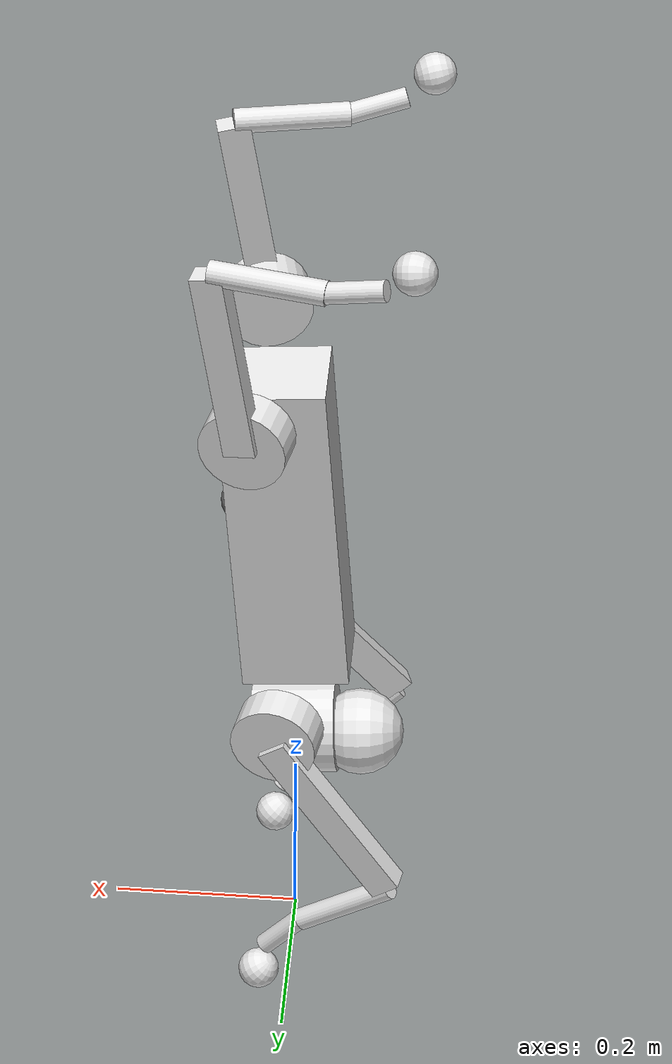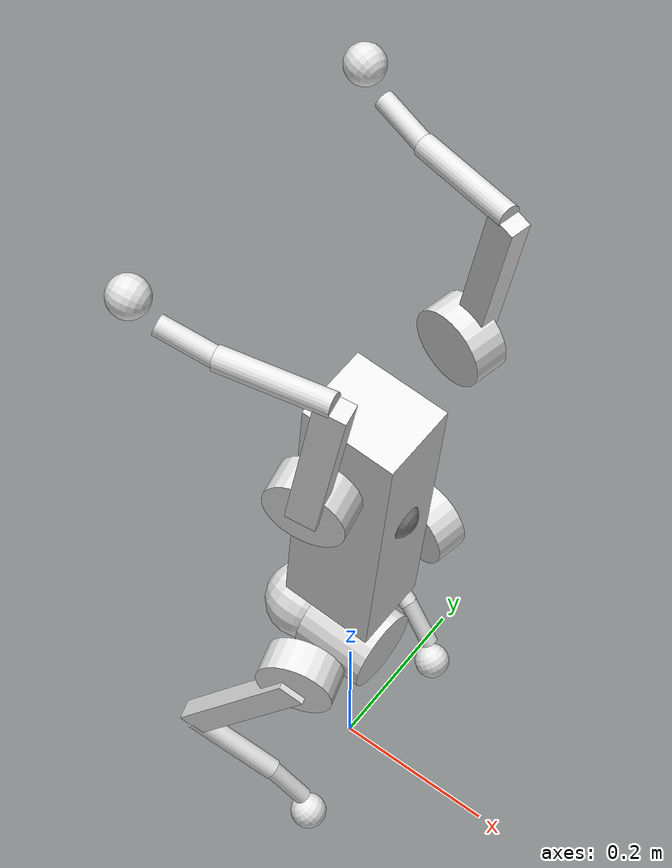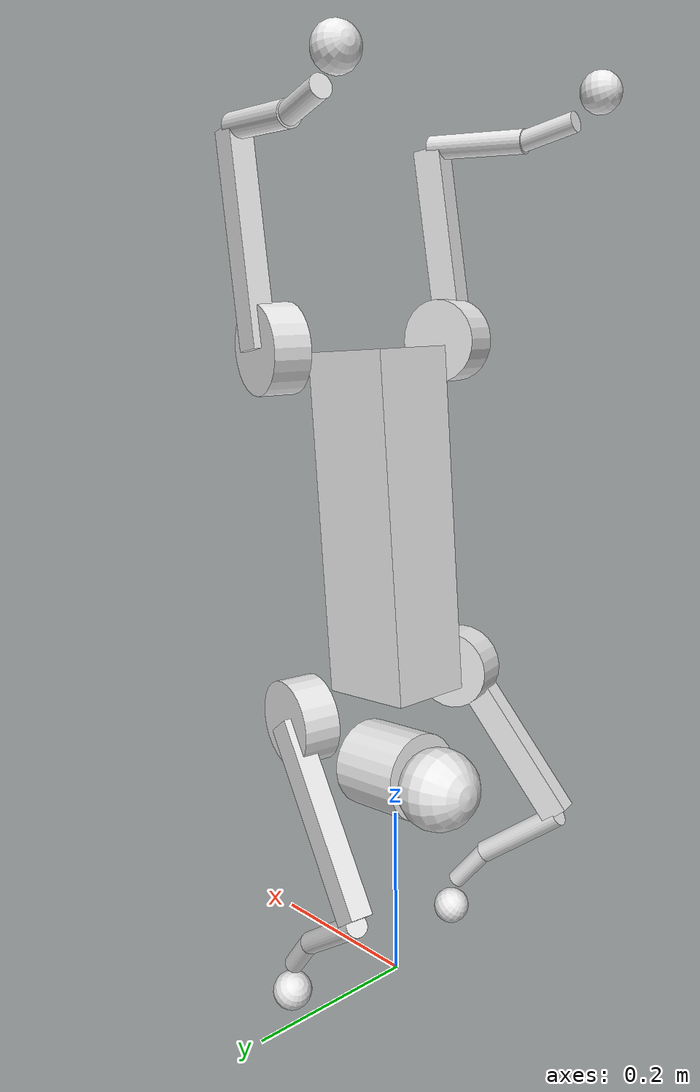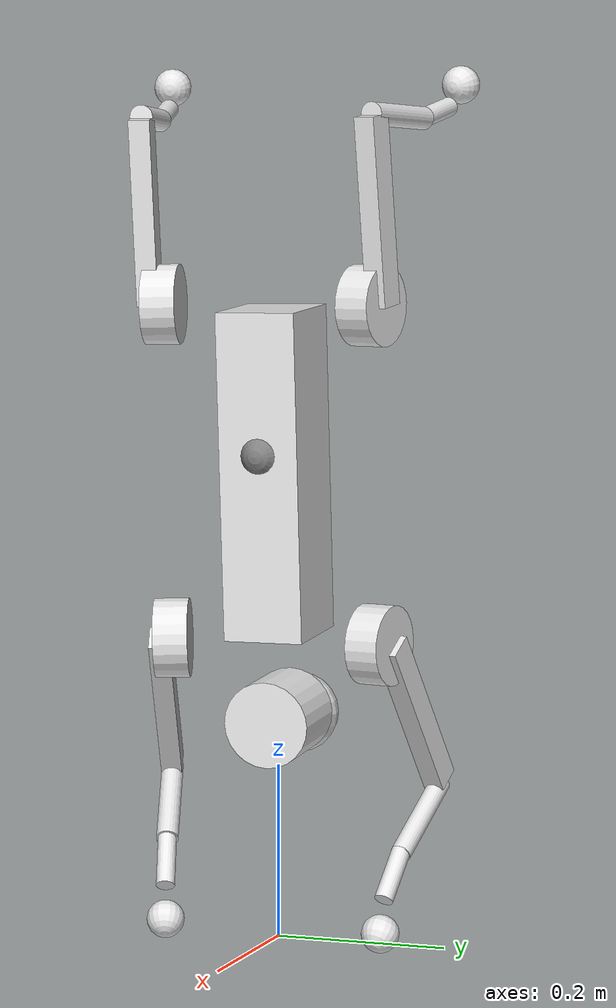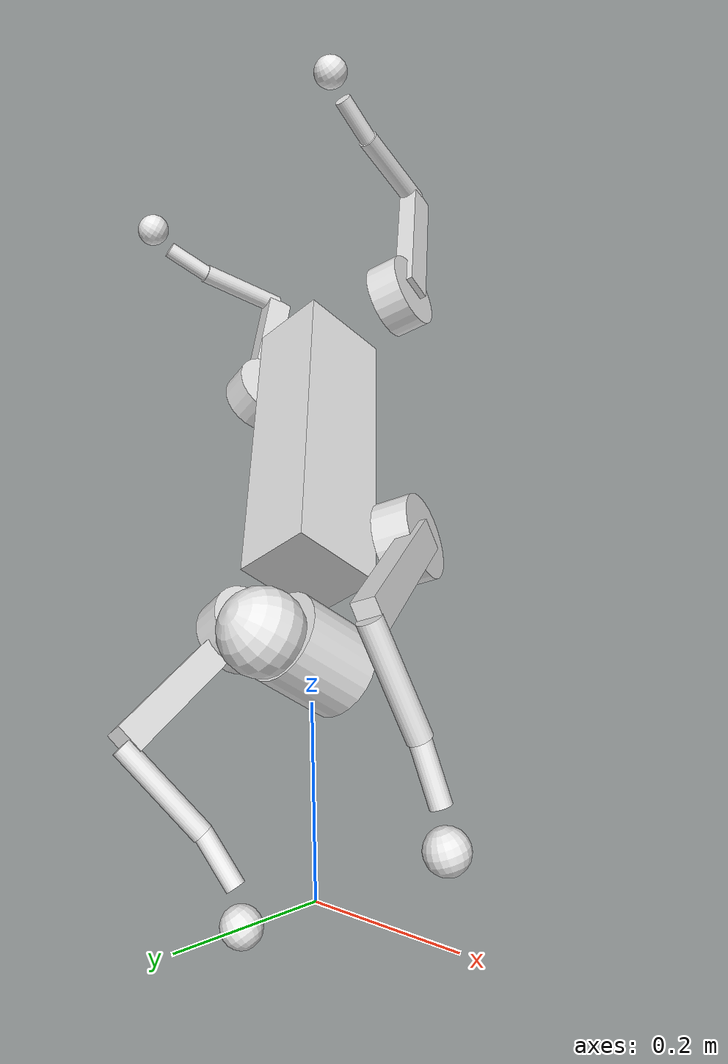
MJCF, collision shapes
<mujoco>
  <compiler angle="radian" assetdir="assets"/>
  <option timestep="0.02">
    <flag/>
  </option>
  <statistic/>
  <asset>
    <texture type="2d" colorspace="linear" name="noise_normal" file="noise_normal.png"/>
    <material name="black_plastic" rgba="0.0507087 0.0507087 0.0507087 1.0" reflectance="0.5" roughness="0.4" metallic="0.0" texuniform="true" texrepeat="12.0 12.0">
      <layer texture="noise_normal" role="normal"/>
    </material>
    <material name="black_metal" rgba="0.220085 0.220813 0.2209164 1.0" reflectance="0.5" roughness="0.5" metallic="1.0" texuniform="true" texrepeat="16.0 16.0">
      <layer texture="noise_normal" role="normal"/>
    </material>
    <material name="aluminum_rough" rgba="0.9621279 0.9653596 0.9658199 1.0" reflectance="0.5" roughness="0.54" metallic="1.0" texuniform="true" texrepeat="12.0 12.0">
      <layer texture="noise_normal" role="normal"/>
    </material>
    <material name="gray_plastic" rgba="0.5969514 0.5983734 0.6262097 1.0" reflectance="0.5" roughness="0.4" metallic="0.0"/>
    <material name="black_rubber" rgba="0.0507087 0.0507087 0.0507087 1.0" reflectance="0.5" roughness="0.7" metallic="0.0" texuniform="true" texrepeat="16.0 16.0">
      <layer texture="noise_normal" role="normal"/>
    </material>
    <material name="template" rgba="0.9063318 0.9063318 0.9063318 1.0" reflectance="0.5" roughness="0.5" metallic="0.0"/>
    <mesh name="base_0" file="base_0.obj"/>
    <mesh name="base_1" file="base_1.obj"/>
    <mesh name="base_2" file="base_2.obj"/>
    <mesh name="base_3" file="base_3.obj"/>
    <mesh name="base_4" file="base_4.obj"/>
    <mesh name="hip_0" file="hip_0.obj"/>
    <mesh name="hip_1" file="hip_1.obj"/>
    <mesh name="thigh_0" file="thigh_0.obj"/>
    <mesh name="thigh_1" file="thigh_1.obj"/>
    <mesh name="calf_0" file="calf_0.obj"/>
    <mesh name="foot" file="foot.obj"/>
    <mesh name="thigh_mirror_0" file="thigh_mirror_0.obj"/>
    <mesh name="thigh_mirror_1" file="thigh_mirror_1.obj"/>
    <mesh name="calf_mirror_0" file="calf_mirror_0.obj"/>
  </asset>
  <worldbody>
    <body name="base" pos="0.0117122 -0.0 0.5403712" quat="0.680076 -0.0 0.7331416 0.0">
      <inertial pos="0.021112 0.0 -0.005366" quat="0.000544 -0.7134351 0.0017372 -0.700719" mass="6.921" diaginertia="0.107027 0.0980771 0.0244531"/>
      <joint name="JNT_Joint" pos="0.0 0.0 0.0" axis="0.0 1.0 1e-07" type="free" armature="0.01" damping="0.5" frictionloss="0.2"/>
      <geom name="base1" pos="0.0 0.0 0.0" quat="1.0 -0.0 0.0 0.0" type="box" size="0.1881 0.04675 0.057" material="template" group="3" condim="1" conaffinity="2" friction="0.6 0.005 0.0001" margin="0.001"/>
      <geom name="base2" pos="0.285 0.0 0.01" quat="1.0 -0.0 0.0 0.0" type="cylinder" size="0.05 0.045" material="template" group="3" condim="1" conaffinity="2" friction="0.6 0.005 0.0001" margin="0.001"/>
      <geom name="base3" pos="0.293 0.0 -0.06" quat="1.0 -0.0 0.0 0.0" type="sphere" size="0.047" material="template" group="3" condim="1" conaffinity="2" friction="0.6 0.005 0.0001" margin="0.001"/>
      <geom name="base_0" pos="0.0 -0.0 0.0" quat="1.0 -0.0 0.0 0.0" type="mesh" mesh="base_0" material="black_plastic" group="2" condim="1" contype="0" conaffinity="0" friction="0.6 0.005 0.0001" margin="0.001"/>
      <geom name="base_1" pos="0.0 -0.0 0.0" quat="1.0 -0.0 0.0 0.0" type="mesh" mesh="base_1" material="black_metal" group="2" condim="1" contype="0" conaffinity="0" friction="0.6 0.005 0.0001" margin="0.001"/>
      <geom name="base_2" pos="0.0 -0.0 0.0" quat="1.0 -0.0 0.0 0.0" type="mesh" mesh="base_2" material="black_plastic" group="2" condim="1" contype="0" conaffinity="0" friction="0.6 0.005 0.0001" margin="0.001"/>
      <geom name="base_3" pos="0.0 -0.0 0.0" quat="1.0 -0.0 0.0 0.0" type="mesh" mesh="base_3" material="aluminum_rough" group="2" condim="1" contype="0" conaffinity="0" friction="0.6 0.005 0.0001" margin="0.001"/>
      <geom name="base_4" pos="0.0 -0.0 0.0" quat="1.0 -0.0 0.0 0.0" type="mesh" mesh="base_4" material="gray_plastic" group="2" condim="1" contype="0" conaffinity="0" friction="0.6 0.005 0.0001" margin="0.001"/>
      <site name="imu" pos="-0.02557 0.0 0.04232" quat="1.0 -0.0 0.0 0.0" type="sphere" size="0.025"/>
      <body name="FL_hip" pos="0.1934 0.0465 -0.0" quat="0.9961696 0.0874425 0.0 0.0">
        <inertial pos="-0.0054 0.00194 -0.000105" quat="0.4970137 0.4992449 0.505462 0.4982369" mass="0.678" diaginertia="0.000884 0.000596 0.00048"/>
        <joint name="FL_hip_joint" pos="0.0 0.0 0.0" axis="1.0 -1e-07 -1e-07" type="hinge" range="-1.0472 1.0472" armature="0.01" damping="0.5" frictionloss="0.2"/>
        <geom name="FL_hip_geom" pos="0.0 0.08 0.0" quat="0.7071068 0.7071068 -0.0 0.0" type="cylinder" size="0.046 0.02" material="template" group="3" condim="1" conaffinity="2" friction="0.6 0.005 0.0001" margin="0.001"/>
        <geom name="hip_0" pos="0.0 0.0 -0.0" quat="1.0 -0.0 0.0 -0.0" type="mesh" mesh="hip_0" material="aluminum_rough" group="2" condim="1" contype="0" conaffinity="0" friction="0.6 0.005 0.0001" margin="0.001"/>
        <geom name="hip_1" pos="0.0 0.0 -0.0" quat="1.0 -0.0 0.0 -0.0" type="mesh" mesh="hip_1" material="gray_plastic" group="2" condim="1" contype="0" conaffinity="0" friction="0.6 0.005 0.0001" margin="0.001"/>
        <body name="FL_thigh" pos="-0.0 0.0955 -1e-07" quat="0.875406 0.0 -0.4833884 0.0">
          <inertial pos="-0.00374 -0.0223 -0.0327" quat="0.8295329 0.0847635 -0.0200632 0.5516229" mass="1.152" diaginertia="0.0059497 0.0058415 0.0008788"/>
          <joint name="FL_thigh_joint" pos="0.0 0.0 0.0" axis="-0.0 1.0 1e-07" type="hinge" range="-1.5707999 3.4907" armature="0.01" damping="0.5" frictionloss="0.2"/>
          <geom name="FL_thigh_geom" pos="0.0 0.0 -0.1065" quat="0.7071068 0.0 0.7071068 -0.0" type="box" size="0.1065 0.01225 0.017" material="template" group="3" condim="1" conaffinity="2" friction="0.6 0.005 0.0001" margin="0.001"/>
          <geom name="thigh_0" pos="-0.0 -0.0 -0.0" quat="1.0 0.0 -0.0 -0.0" type="mesh" mesh="thigh_0" material="aluminum_rough" group="2" condim="1" contype="0" conaffinity="0" friction="0.6 0.005 0.0001" margin="0.001"/>
          <geom name="thigh_1" pos="-0.0 -0.0 -0.0" quat="1.0 0.0 -0.0 -0.0" type="mesh" mesh="thigh_1" material="gray_plastic" group="2" condim="1" contype="0" conaffinity="0" friction="0.6 0.005 0.0001" margin="0.001"/>
          <body name="FL_calf" pos="-0.0 0.0 -0.213" quat="0.7692807 -0.0 -0.6389109 -0.0">
            <inertial pos="0.006296 -0.0006221 -0.141417" quat="0.7106718 0.001541 -0.0045008 0.7035077" mass="0.241352" diaginertia="0.0014901 0.0014636 5.31e-05"/>
            <joint name="FL_calf_joint" pos="0.0 0.0 0.0" axis="-0.0 1.0 1e-07" type="hinge" range="-2.7227001 -0.83776" armature="0.01" damping="0.5" frictionloss="0.2"/>
            <geom name="calf_0" pos="0.0 0.0 0.0" quat="1.0 0.0 0.0 0.0" type="mesh" mesh="calf_0" material="aluminum_rough" group="2" condim="1" contype="0" conaffinity="0" friction="0.6 0.005 0.0001" margin="0.001"/>
            <geom name="FL" pos="-0.002 0.0 -0.213" quat="1.0 0.0 0.0 0.0" type="sphere" size="0.022" material="template" group="3" condim="6" conaffinity="2" priority="1" friction="0.4 0.02 0.01" margin="0.001"/>
            <geom name="FL_calf_geom1" pos="0.008 0.0 -0.06" quat="0.9944927 -0.0 -0.104807 0.0" type="cylinder" size="0.012 0.06" material="template" group="3" condim="1" conaffinity="2" friction="0.6 0.005 0.0001" margin="0.001"/>
            <geom name="FL_calf_geom2" pos="0.02 0.0 -0.148" quat="0.9996875 0.0 0.0249974 0.0" type="cylinder" size="0.011 0.0325" material="template" group="3" condim="1" conaffinity="2" friction="0.6 0.005 0.0001" margin="0.001"/>
            <geom name="foot" pos="-0.0 0.0 -0.213" quat="1.0 0.0 0.0 0.0" type="mesh" mesh="foot" material="black_rubber" group="2" condim="1" contype="0" conaffinity="0" friction="0.6 0.005 0.0001" margin="0.001"/>
          </body>
        </body>
      </body>
      <body name="FR_hip" pos="0.1934001 -0.0465 0.0" quat="0.9894196 -0.1450818 -0.0 0.0">
        <inertial pos="-0.0054 -0.00194 -0.000105" quat="0.4982369 0.5054619 0.499245 0.4970139" mass="0.678" diaginertia="0.000884 0.000596 0.00048"/>
        <joint name="FR_hip_joint" pos="0.0 0.0 0.0" axis="1.0 -1e-07 -1e-07" type="hinge" range="-1.0472 1.0472" armature="0.01" damping="0.5" frictionloss="0.2"/>
        <geom name="FR_hip_geom" pos="0.0 -0.08 0.0" quat="0.7071066 0.7071069 -0.0 0.0" type="cylinder" size="0.046 0.02" material="template" group="3" condim="1" conaffinity="2" friction="0.6 0.005 0.0001" margin="0.001"/>
        <geom name="hip_0_001" pos="0.0 0.0 0.0" quat="4.63e-05 1.0 -0.0 0.0" type="mesh" mesh="hip_0" material="aluminum_rough" group="2" condim="1" contype="0" conaffinity="0" friction="0.6 0.005 0.0001" margin="0.001"/>
        <geom name="hip_1_001" pos="0.0 0.0 0.0" quat="4.63e-05 1.0 -0.0 0.0" type="mesh" mesh="hip_1" material="gray_plastic" group="2" condim="1" contype="0" conaffinity="0" friction="0.6 0.005 0.0001" margin="0.001"/>
        <body name="FR_thigh" pos="0.0 -0.0955 -0.0" quat="0.8815233 -0.0 -0.4721405 -0.0">
          <inertial pos="-0.00374 0.0223 -0.0327" quat="0.551623 -0.0200632 0.0847635 0.8295329" mass="1.152" diaginertia="0.0059497 0.0058415 0.0008788"/>
          <joint name="FR_thigh_joint" pos="0.0 0.0 0.0" axis="-0.0 1.0 1e-07" type="hinge" range="-1.5707999 3.4907" armature="0.01" damping="0.5" frictionloss="0.2"/>
          <geom name="FR_thigh_geom" pos="0.0 0.0 -0.1065" quat="0.7071068 0.0 0.7071068 -0.0" type="box" size="0.1065 0.01225 0.017" material="template" group="3" condim="1" conaffinity="2" friction="0.6 0.005 0.0001" margin="0.001"/>
          <geom name="thigh_mirror_0" pos="-0.0 0.0 -1e-07" quat="1.0 0.0 -1e-07 -0.0" type="mesh" mesh="thigh_mirror_0" material="aluminum_rough" group="2" condim="1" contype="0" conaffinity="0" friction="0.6 0.005 0.0001" margin="0.001"/>
          <geom name="thigh_mirror_1" pos="-0.0 0.0 -1e-07" quat="1.0 0.0 -1e-07 -0.0" type="mesh" mesh="thigh_mirror_1" material="gray_plastic" group="2" condim="1" contype="0" conaffinity="0" friction="0.6 0.005 0.0001" margin="0.001"/>
          <body name="FR_calf" pos="-0.0 0.0 -0.2130001" quat="0.76677 -0.0 -0.6419219 -0.0">
            <inertial pos="0.006296 0.0006221 -0.141417" quat="0.7035078 -0.0045009 0.001541 0.7106717" mass="0.241352" diaginertia="0.0014901 0.0014636 5.31e-05"/>
            <joint name="FR_calf_joint" pos="0.0 0.0 0.0" axis="0.0 1.0 1e-07" type="hinge" range="-2.7227001 -0.83776" armature="0.01" damping="0.5" frictionloss="0.2"/>
            <geom name="calf_mirror_0" pos="0.0 -0.0 -0.0" quat="1.0 0.0 0.0 -0.0" type="mesh" mesh="calf_mirror_0" material="aluminum_rough" group="2" condim="1" contype="0" conaffinity="0" friction="0.6 0.005 0.0001" margin="0.001"/>
            <geom name="foot_001" pos="0.0 0.0 -0.213" quat="1.0 -0.0 0.0 -0.0" type="mesh" mesh="foot" material="black_rubber" group="2" condim="1" contype="0" conaffinity="0" friction="0.6 0.005 0.0001" margin="0.001"/>
            <geom name="FR" pos="-0.002 0.0 -0.213" quat="1.0 -0.0 0.0 -0.0" type="sphere" size="0.022" material="template" group="3" condim="6" conaffinity="2" priority="1" friction="0.4 0.02 0.01" margin="0.001"/>
            <geom name="FR_calf_geom1" pos="0.01 0.0 -0.06" quat="0.9950042 0.0 -0.0998334 -0.0" type="cylinder" size="0.013 0.06" material="template" group="3" condim="1" conaffinity="2" friction="0.6 0.005 0.0001" margin="0.001"/>
            <geom name="FR_calf_geom2" pos="0.02 0.0 -0.148" quat="0.9996875 -0.0 0.0249974 -0.0" type="cylinder" size="0.011 0.0325" material="template" group="3" condim="1" conaffinity="2" friction="0.6 0.005 0.0001" margin="0.001"/>
          </body>
        </body>
      </body>
      <body name="RL_hip" pos="-0.1933997 0.0465 -0.0" quat="0.9948294 0.1015601 0.0 0.0">
        <inertial pos="0.0054 0.00194 -0.000105" quat="0.5054618 0.498237 0.497014 0.4992449" mass="0.678" diaginertia="0.000884 0.000596 0.00048"/>
        <joint name="RL_hip_joint" pos="0.0 0.0 0.0" axis="1.0 -1e-07 -1e-07" type="hinge" range="-1.0472 1.0472" armature="0.01" damping="0.5" frictionloss="0.2"/>
        <geom name="hip_0_002" pos="0.0 0.0 0.0" quat="4.63e-05 0.0 1.0 -0.0" type="mesh" mesh="hip_0" material="aluminum_rough" group="2" condim="1" contype="0" conaffinity="0" friction="0.6 0.005 0.0001" margin="0.001"/>
        <geom name="hip_1_002" pos="0.0 0.0 0.0" quat="4.63e-05 0.0 1.0 -0.0" type="mesh" mesh="hip_1" material="gray_plastic" group="2" condim="1" contype="0" conaffinity="0" friction="0.6 0.005 0.0001" margin="0.001"/>
        <geom name="RL_hip_geom" pos="0.0 0.08 0.0" quat="0.7071066 0.7071069 0.0 -0.0" type="cylinder" size="0.046 0.02" material="template" group="3" condim="1" conaffinity="2" friction="0.6 0.005 0.0001" margin="0.001"/>
        <body name="RL_thigh" pos="-2e-07 0.0955001 1e-07" quat="0.6766968 -0.0 0.7362618 -0.0">
          <inertial pos="-0.00374 -0.0223 -0.0327" quat="0.8295329 0.0847635 -0.0200632 0.5516229" mass="1.152" diaginertia="0.0059497 0.0058415 0.0008788"/>
          <joint name="RL_thigh_joint" pos="0.0 0.0 0.0" axis="0.0 1.0 1e-07" type="hinge" range="-0.5236 4.5379" armature="0.01" damping="0.5" frictionloss="0.2"/>
          <geom name="RL_thigh_geom" pos="0.0 0.0 -0.1065" quat="0.7071068 0.0 0.7071068 0.0" type="box" size="0.1065 0.01225 0.017" material="template" group="3" condim="1" conaffinity="2" friction="0.6 0.005 0.0001" margin="0.001"/>
          <geom name="thigh_0_001" pos="0.0 0.0 0.0" quat="1.0 0.0 -0.0 0.0" type="mesh" mesh="thigh_0" material="aluminum_rough" group="2" condim="1" contype="0" conaffinity="0" friction="0.6 0.005 0.0001" margin="0.001"/>
          <geom name="thigh_1_001" pos="0.0 0.0 0.0" quat="1.0 0.0 -0.0 0.0" type="mesh" mesh="thigh_1" material="gray_plastic" group="2" condim="1" contype="0" conaffinity="0" friction="0.6 0.005 0.0001" margin="0.001"/>
          <body name="RL_calf" pos="-0.0 0.0 -0.2130001" quat="0.7177571 0.0 -0.6962937 -0.0">
            <inertial pos="0.006296 -0.0006221 -0.141417" quat="0.7106718 0.001541 -0.0045009 0.7035077" mass="0.241352" diaginertia="0.0014901 0.0014636 5.31e-05"/>
            <joint name="RL_calf_joint" pos="0.0 0.0 0.0" axis="-0.0 1.0 1e-07" type="hinge" range="-2.7227001 -0.83776" armature="0.01" damping="0.5" frictionloss="0.2"/>
            <geom name="calf_0_001" pos="0.0 0.0 0.0" quat="1.0 -0.0 -0.0 -0.0" type="mesh" mesh="calf_0" material="aluminum_rough" group="2" condim="1" contype="0" conaffinity="0" friction="0.6 0.005 0.0001" margin="0.001"/>
            <geom name="foot_002" pos="0.0 0.0 -0.213" quat="1.0 -0.0 -0.0 -0.0" type="mesh" mesh="foot" material="black_rubber" group="2" condim="1" contype="0" conaffinity="0" friction="0.6 0.005 0.0001" margin="0.001"/>
            <geom name="RL" pos="-0.002 0.0 -0.213" quat="1.0 -0.0 -0.0 -0.0" type="sphere" size="0.022" material="template" group="3" condim="6" conaffinity="2" priority="1" friction="0.4 0.02 0.01" margin="0.001"/>
            <geom name="RL_calf_geom1" pos="0.01 0.0 -0.06" quat="0.9950042 -0.0 -0.0998334 -0.0" type="cylinder" size="0.013 0.06" material="template" group="3" condim="1" conaffinity="2" friction="0.6 0.005 0.0001" margin="0.001"/>
            <geom name="RL_calf_geom2" pos="0.02 0.0 -0.148" quat="0.9996875 -0.0 0.0249974 0.0" type="cylinder" size="0.011 0.0325" material="template" group="3" condim="1" conaffinity="2" friction="0.6 0.005 0.0001" margin="0.001"/>
          </body>
        </body>
      </body>
      <body name="RR_hip" pos="-0.1933997 -0.0465 0.0" quat="0.9950722 -0.0991532 -0.0 -0.0">
        <inertial pos="0.0054 -0.00194 -0.000105" quat="0.4992448 0.4970139 0.4982371 0.5054619" mass="0.678" diaginertia="0.000884 0.000596 0.00048"/>
        <joint name="RR_hip_joint" pos="0.0 0.0 0.0" axis="1.0 -1e-07 -1e-07" type="hinge" range="-1.0472 1.0472" armature="0.01" damping="0.5" frictionloss="0.2"/>
        <geom name="hip_0_003" pos="0.0 0.0 0.0" quat="0.0 4.63e-05 4.63e-05 -1.0" type="mesh" mesh="hip_0" material="aluminum_rough" group="2" condim="1" contype="0" conaffinity="0" friction="0.6 0.005 0.0001" margin="0.001"/>
        <geom name="hip_1_003" pos="0.0 0.0 0.0" quat="0.0 4.63e-05 4.63e-05 -1.0" type="mesh" mesh="hip_1" material="gray_plastic" group="2" condim="1" contype="0" conaffinity="0" friction="0.6 0.005 0.0001" margin="0.001"/>
        <geom name="RR_hip_geom" pos="0.0 -0.08 0.0" quat="0.7071066 0.7071069 -0.0 0.0" type="cylinder" size="0.046 0.02" material="template" group="3" condim="1" conaffinity="2" friction="0.6 0.005 0.0001" margin="0.001"/>
        <body name="RR_thigh" pos="1e-07 -0.0955 -1e-07" quat="0.6755269 0.0 0.7373353 -0.0">
          <inertial pos="-0.00374 0.0223 -0.0327" quat="0.5516229 -0.0200632 0.0847635 0.8295329" mass="1.152" diaginertia="0.0059497 0.0058415 0.0008788"/>
          <joint name="RR_thigh_joint" pos="0.0 0.0 0.0" axis="0.0 1.0 1e-07" type="hinge" range="-0.5236 4.5379" armature="0.01" damping="0.5" frictionloss="0.2"/>
          <geom name="RR_thigh_geom" pos="0.0 0.0 -0.1065" quat="0.7071068 -0.0 0.7071068 -0.0" type="box" size="0.1065 0.01225 0.017" material="template" group="3" condim="1" conaffinity="2" friction="0.6 0.005 0.0001" margin="0.001"/>
          <geom name="thigh_mirror_0_001" pos="0.0 0.0 0.0" quat="1.0 -0.0 0.0 0.0" type="mesh" mesh="thigh_mirror_0" material="aluminum_rough" group="2" condim="1" contype="0" conaffinity="0" friction="0.6 0.005 0.0001" margin="0.001"/>
          <geom name="thigh_mirror_1_001" pos="0.0 0.0 0.0" quat="1.0 -0.0 0.0 0.0" type="mesh" mesh="thigh_mirror_1" material="gray_plastic" group="2" condim="1" contype="0" conaffinity="0" friction="0.6 0.005 0.0001" margin="0.001"/>
          <body name="RR_calf" pos="-0.0 -0.0 -0.2130005" quat="0.7205225 0.0 -0.6934316 -0.0">
            <inertial pos="0.006296 0.0006221 -0.141417" quat="0.7035078 -0.0045009 0.001541 0.7106717" mass="0.241352" diaginertia="0.0014901 0.0014636 5.31e-05"/>
            <joint name="RR_calf_joint" pos="0.0 0.0 0.0" axis="0.0 1.0 1e-07" type="hinge" range="-2.7227001 -0.83776" armature="0.01" damping="0.5" frictionloss="0.2"/>
            <geom name="calf_mirror_0_001" pos="0.0 0.0 0.0" quat="1.0 -0.0 0.0 -0.0" type="mesh" mesh="calf_mirror_0" material="aluminum_rough" group="2" condim="1" contype="0" conaffinity="0" friction="0.6 0.005 0.0001" margin="0.001"/>
            <geom name="foot_003" pos="0.0 0.0 -0.213" quat="1.0 -0.0 0.0 -0.0" type="mesh" mesh="foot" material="black_rubber" group="2" condim="1" contype="0" conaffinity="0" friction="0.6 0.005 0.0001" margin="0.001"/>
            <geom name="RR" pos="-0.002 0.0 -0.213" quat="1.0 -0.0 0.0 -0.0" type="sphere" size="0.022" material="template" group="3" condim="6" conaffinity="2" priority="1" friction="0.4 0.02 0.01" margin="0.001"/>
            <geom name="RR_calf_geom1" pos="0.01 0.0 -0.06" quat="0.9950042 -0.0 -0.0998334 0.0" type="cylinder" size="0.013 0.06" material="template" group="3" condim="1" conaffinity="2" friction="0.6 0.005 0.0001" margin="0.001"/>
            <geom name="RR_calf_geom2" pos="0.02 0.0 -0.148" quat="0.9996875 -0.0 0.0249974 -0.0" type="cylinder" size="0.011 0.0325" material="template" group="3" condim="1" conaffinity="2" friction="0.6 0.005 0.0001" margin="0.001"/>
          </body>
        </body>
      </body>
    </body>
  </worldbody>
  <actuator>
    <position name="FR_hip_001" joint="FR_hip_joint" forcerange="-23.7000008 23.7000008" kp="35.0"/>
    <position name="FR_thigh_001" joint="FR_thigh_joint" forcerange="-23.7000008 23.7000008" kp="35.0"/>
    <position name="FR_calf_001" joint="FR_calf_joint" forcerange="-45.4300003 45.4300003" kp="35.0"/>
    <position name="FL_hip_001" joint="FL_hip_joint" forcerange="-23.7000008 23.7000008" kp="35.0"/>
    <position name="FL_thigh_001" joint="FL_thigh_joint" forcerange="-23.7000008 23.7000008" kp="35.0"/>
    <position name="FL_calf_001" joint="FL_calf_joint" forcerange="-45.4300003 45.4300003" kp="35.0"/>
    <position name="RR_hip_001" joint="RR_hip_joint" forcerange="-23.7000008 23.7000008" kp="35.0"/>
    <position name="RR_thigh_001" joint="RR_thigh_joint" forcerange="-23.7000008 23.7000008" kp="35.0"/>
    <position name="RR_calf_001" joint="RR_calf_joint" forcerange="-45.4300003 45.4300003" kp="35.0"/>
    <position name="RL_hip_001" joint="RL_hip_joint" forcerange="-23.7000008 23.7000008" kp="35.0"/>
    <position name="RL_thigh_001" joint="RL_thigh_joint" forcerange="-23.7000008 23.7000008" kp="35.0"/>
    <position name="RL_calf_001" joint="RL_calf_joint" forcerange="-45.4300003 45.4300003" kp="35.0"/>
  </actuator>
  <sensor>
    <velocimeter name="local_linvel" site="imu"/>
    <framezaxis name="upvector" objtype="site" objname="imu"/>
    <framepos name="global_position" objtype="site" objname="imu"/>
    <framelinvel name="global_linvel" objtype="site" objname="imu"/>
    <framepos name="FR_pos" objtype="geom" objname="FR"/>
    <framepos name="FL_pos" objtype="geom" objname="FL"/>
    <framepos name="RR_pos" objtype="geom" objname="RR"/>
    <framepos name="RL_pos" objtype="geom" objname="RL"/>
    <framelinvel name="FR_vel" objtype="geom" objname="FR"/>
    <framelinvel name="FL_vel" objtype="geom" objname="FL"/>
    <framelinvel name="RR_vel" objtype="geom" objname="RR"/>
    <framelinvel name="RL_vel" objtype="geom" objname="RL"/>
  </sensor>
</mujoco>
